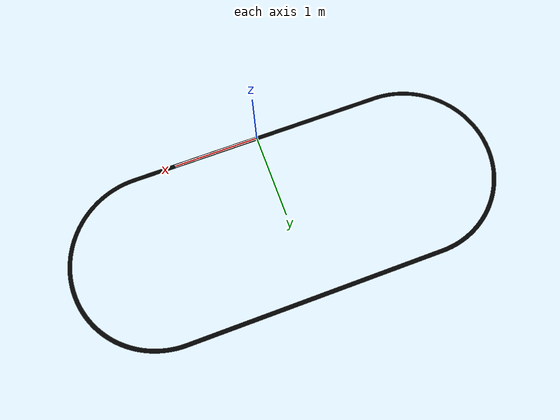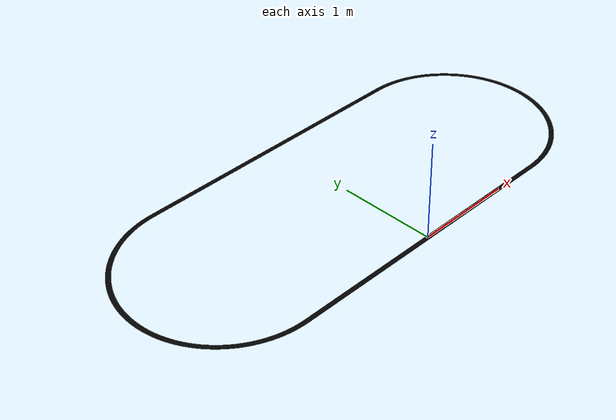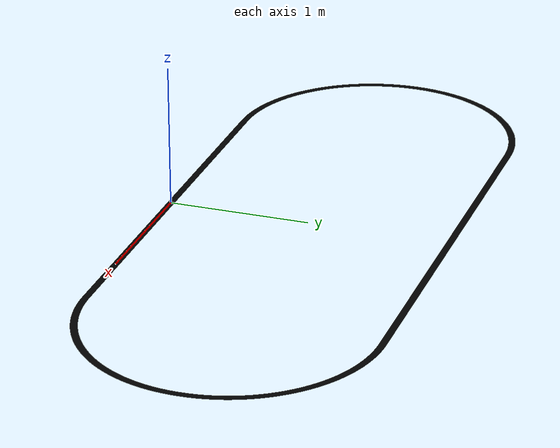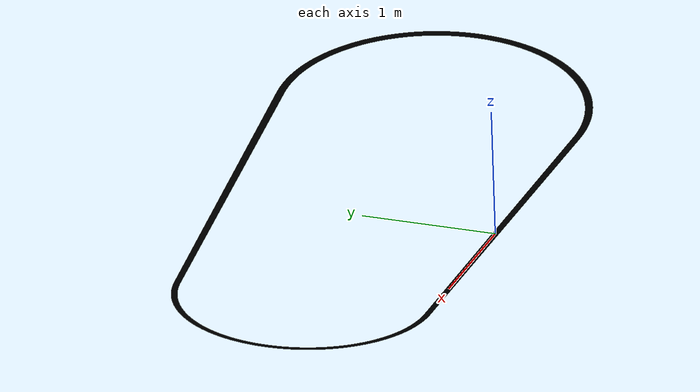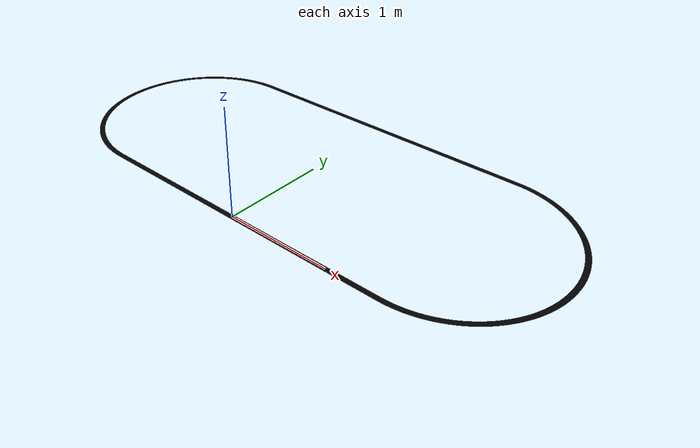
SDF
<?xml version="1.0"?>
<sdf version="1.6">
    <model name="null_track">
        <static>true</static>
        <link name="link">
            <visual name="visual">
                <cast_shadows>false</cast_shadows>
                <geometry>
                    <mesh>
                        <uri>model://null_track/meshes/null_track.dae</uri>
                        <scale>1 1 1</scale>
                    </mesh>
                </geometry>
            </visual>
        </link>
    </model>
</sdf>
